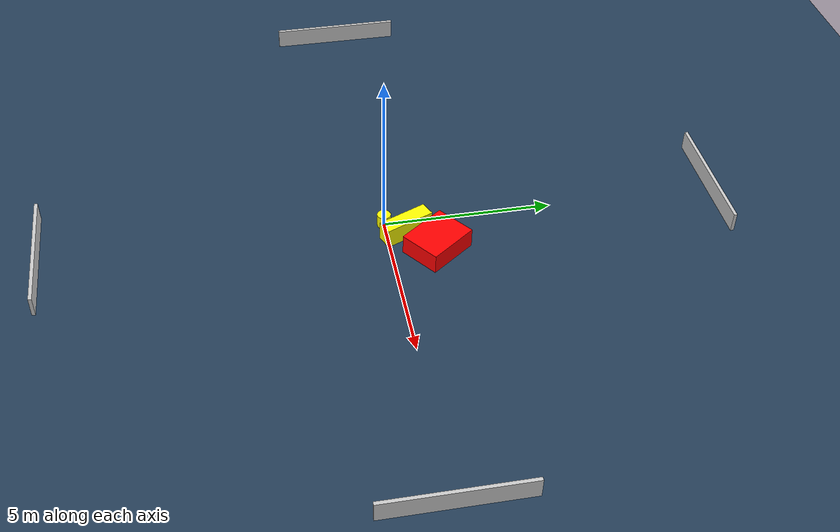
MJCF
<?xml version="1.0" ?>
<mujoco model="generated_environment">
  <option timestep="0.01" integrator="RK4" cone="elliptic"/>
  <default>
    <geom density="1"/>
  </default>
  <asset>
    <texture builtin="gradient" height="3072" name="skybox" rgb1="0.3 0.5 0.7" rgb2="0 0 0" type="skybox" width="512"/>
    <texture builtin="checker" height="300" name="groundplane" rgb1="0.2 0.3 0.4" rgb2="0.1 0.2 0.3" type="2d" width="300"/>
    <material name="groundplane" reflectance="0.2" texrepeat="5 5" texture="groundplane"/>
  </asset>
  <worldbody>
    <light dir="0 0 -1" directional="true" pos="0 0 1.5"/>
    <geom condim="3" friction="0.5 0.005 0.001" material="groundplane" name="floor" pos="0 0 0" size="0 0 0.05" type="plane"/>
    <body name="walls">
      <geom name="wall_1" condim="4" pos="-10.0 0.0 0.3" rgba="0.800000011920929 0.800000011920929 0.800000011920929 1.0" size="0.05 2.0 0.3" type="box"/>
      <geom name="wall_2" condim="4" pos="10.0 0.0 0.3" rgba="0.800000011920929 0.800000011920929 0.800000011920929 1.0" size="0.05 2.0 0.3" type="box"/>
      <geom name="wall_3" condim="4" pos="0.0 -10.0 0.3" rgba="0.800000011920929 0.800000011920929 0.800000011920929 1.0" size="2.0 0.05 0.3" type="box"/>
      <geom name="wall_4" condim="4" pos="0.0 10.0 0.3" rgba="0.800000011920929 0.800000011920929 0.800000011920929 1.0" size="2.0 0.05 0.3" type="box"/>
    </body>
    <body name="robot">
      <joint name="joint_x" type="slide" pos="0 0 0" axis="1 0 0"/>
      <joint name="joint_y" type="slide" pos="0 0 0" axis="0 1 0"/>
      <geom name="robot" type="cylinder" pos="0.0 0.0 0.2" size="0.2 0.2 0.0" mass="5.0" friction="1.0 0.005 0.0001" condim="4" rgba="1.0 1.0 0.0 1.0"/>
    </body>
    <body name="obstacle_1_movable">
      <geom name="obstacle_1_movable" condim="4" pos="0.4836132518412052 0.569199130461796 0.3" euler="0 0 23.256251213227458" friction="0.0 0.005 0.001" rgba="1.0 1.0 0.0 1.0" size="0.22997757160376653 0.7573307833886291 0.3" type="box" mass="0.1"/>
      <joint type="free"/>
    </body>
    <body name="obstacle_2_static">
      <geom name="obstacle_2_static" condim="4" pos="1.2869338508575636 1.3297412543209692 0.3" euler="0 0 306.7091895371236" friction="0.0 0.005 0.001" rgba="1.0 0.0 0.0 1.0" size="0.7834014501922784 0.623024043830926 0.3" type="box"/>
    </body>
  </worldbody>
  <actuator>
    <motor name="actuator_x" joint="joint_x" gear="1" ctrlrange="-1 1"/>
    <motor name="actuator_y" joint="joint_y" gear="1" ctrlrange="-1 1"/>
  </actuator>
</mujoco>
